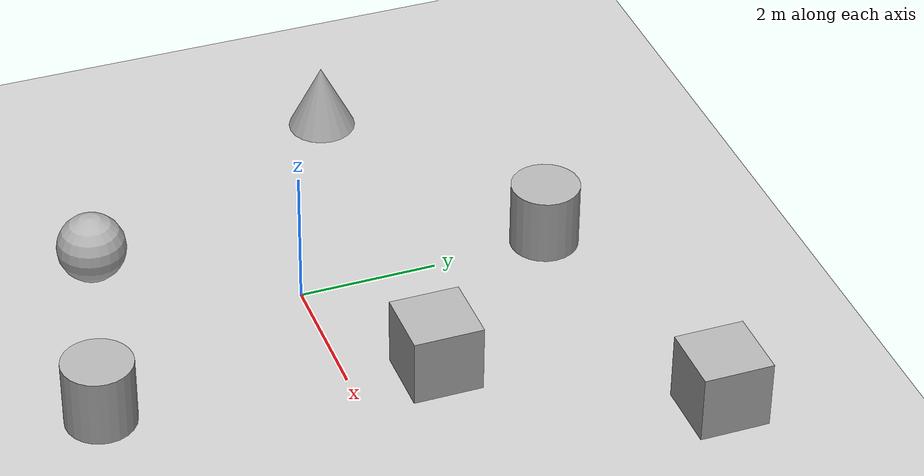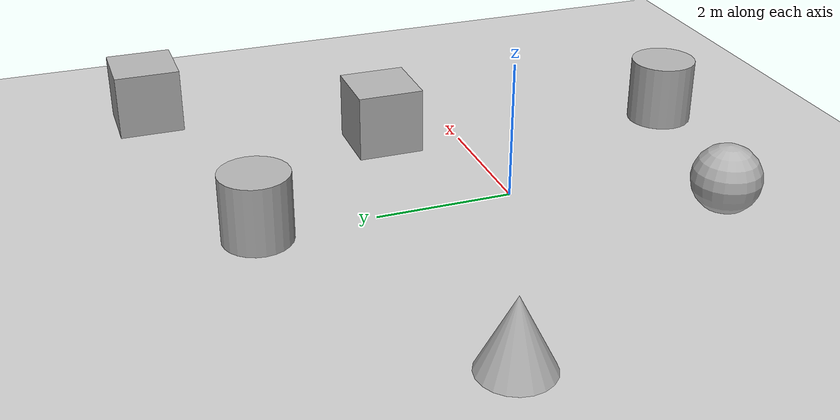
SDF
<sdf version='1.10'>
  <world name='simple_sim_world'>
    <physics name='1ms' type='ignored'>
      <max_step_size>0.001</max_step_size>
      <real_time_factor>1</real_time_factor>
      <real_time_update_rate>1000</real_time_update_rate>
    </physics>

    <plugin
      filename="gz-sim-sensors-system"
      name="gz::sim::systems::Sensors">
      <render_engine>ogre2</render_engine>
    </plugin>
    <plugin
      filename="gz-sim-imu-system"
      name="gz::sim::systems::Imu">
    </plugin>

    <plugin name='gz::sim::systems::Physics' filename='gz-sim-physics-system'/>
    <plugin name='gz::sim::systems::UserCommands' filename='gz-sim-user-commands-system'/>
    <plugin name='gz::sim::systems::SceneBroadcaster' filename='gz-sim-scene-broadcaster-system'/>
    <plugin name='gz::sim::systems::Contact' filename='gz-sim-contact-system'/>
    <gravity>0 0 -9.8000000000000007</gravity>
    <magnetic_field>5.5644999999999998e-06 2.2875799999999999e-05 -4.2388400000000002e-05</magnetic_field>
    <atmosphere type='adiabatic'/>
    <scene>
      <ambient>0.400000006 0.400000006 0.400000006 1</ambient>
      <background>0.699999988 0.699999988 0.699999988 1</background>
      <shadows>true</shadows>
    </scene>

    <model name='ground_plane'>
      <static>true</static>
      <link name='link'>
        <collision name='collision'>
          <geometry>
            <plane>
              <normal>0 0 1</normal>
              <size>100 100</size>
            </plane>
          </geometry>
          <surface>
            <friction>
              <ode/>
            </friction>
            <bounce/>
            <contact/>
          </surface>
        </collision>
        <visual name='visual'>
          <geometry>
            <plane>
              <normal>0 0 1</normal>
              <size>100 100</size>
            </plane>
          </geometry>
          <material>
            <ambient>0.800000012 0.800000012 0.800000012 1</ambient>
            <diffuse>0.800000012 0.800000012 0.800000012 1</diffuse>
            <specular>0.800000012 0.800000012 0.800000012 1</specular>
          </material>
        </visual>
        <pose>0 0 0 0 0 0</pose>
        <inertial>
          <pose>0 0 0 0 0 0</pose>
          <mass>1</mass>
          <inertia>
            <ixx>1</ixx>
            <ixy>0</ixy>
            <ixz>0</ixz>
            <iyy>1</iyy>
            <iyz>0</iyz>
            <izz>1</izz>
          </inertia>
        </inertial>
        <enable_wind>false</enable_wind>
      </link>
      <pose>0 0 0 0 0 0</pose>
      <self_collide>false</self_collide>
    </model>
    <model name='box'>
      <pose>2.272111575905372 1.1850102857128912 0.49999999990199806 6.2287739151293738e-22 9.3279666454713669e-22 -3.6315533669320137e-22</pose>
      <link name='box_link'>
        <inertial>
          <inertia>
            <ixx>0.16666</ixx>
            <ixy>0</ixy>
            <ixz>0</ixz>
            <iyy>0.16666</iyy>
            <iyz>0</iyz>
            <izz>0.16666</izz>
          </inertia>
          <mass>1</mass>
          <pose>0 0 0 0 0 0</pose>
        </inertial>
        <collision name='box_collision'>
          <geometry>
            <box>
              <size>1 1 1</size>
            </box>
          </geometry>
          <surface>
            <friction>
              <ode/>
            </friction>
            <bounce/>
            <contact/>
          </surface>
        </collision>
        <visual name='box_visual'>
          <geometry>
            <box>
              <size>1 1 1</size>
            </box>
          </geometry>
          <material>
            <ambient>0.300000012 0.300000012 0.300000012 1</ambient>
            <diffuse>0.699999988 0.699999988 0.699999988 1</diffuse>
            <specular>1 1 1 1</specular>
          </material>
        </visual>
        <pose>0 0 0 0 0 0</pose>
        <enable_wind>false</enable_wind>
      </link>
      <static>false</static>
      <self_collide>false</self_collide>
    </model>
    <model name='cylinder'>
      <pose>1.6812653300383893 -3.3732430633719108 0.49999942638036005 2.5801667946704946e-19 2.19751785442317e-19 -7.7094167851470315e-21</pose>
      <link name='cylinder_link'>
        <inertial>
          <inertia>
            <ixx>0.14580000000000001</ixx>
            <ixy>0</ixy>
            <ixz>0</ixz>
            <iyy>0.14580000000000001</iyy>
            <iyz>0</iyz>
            <izz>0.125</izz>
          </inertia>
          <mass>1</mass>
          <pose>0 0 0 0 0 0</pose>
        </inertial>
        <collision name='cylinder_collision'>
          <geometry>
            <cylinder>
              <radius>0.5</radius>
              <length>1</length>
            </cylinder>
          </geometry>
          <surface>
            <friction>
              <ode/>
            </friction>
            <bounce/>
            <contact/>
          </surface>
        </collision>
        <visual name='cylinder_visual'>
          <geometry>
            <cylinder>
              <radius>0.5</radius>
              <length>1</length>
            </cylinder>
          </geometry>
          <material>
            <ambient>0.300000012 0.300000012 0.300000012 1</ambient>
            <diffuse>0.699999988 0.699999988 0.699999988 1</diffuse>
            <specular>1 1 1 1</specular>
          </material>
        </visual>
        <pose>0 0 0 0 0 0</pose>
        <enable_wind>false</enable_wind>
      </link>
      <static>false</static>
      <self_collide>false</self_collide>
    </model>
    <model name='cylinder_0'>
      <pose>-0.031342582016663734 3.6935259266045577 0.49999942638036005 1.2705141803863919e-19 3.2665973555705939e-19 2.3475880288331791e-20</pose>
      <link name='cylinder_link'>
        <inertial>
          <inertia>
            <ixx>0.14580000000000001</ixx>
            <ixy>0</ixy>
            <ixz>0</ixz>
            <iyy>0.14580000000000001</iyy>
            <iyz>0</iyz>
            <izz>0.125</izz>
          </inertia>
          <mass>1</mass>
          <pose>0 0 0 0 0 0</pose>
        </inertial>
        <collision name='cylinder_collision'>
          <geometry>
            <cylinder>
              <radius>0.5</radius>
              <length>1</length>
            </cylinder>
          </geometry>
          <surface>
            <friction>
              <ode/>
            </friction>
            <bounce/>
            <contact/>
          </surface>
        </collision>
        <visual name='cylinder_visual'>
          <geometry>
            <cylinder>
              <radius>0.5</radius>
              <length>1</length>
            </cylinder>
          </geometry>
          <material>
            <ambient>0.300000012 0.300000012 0.300000012 1</ambient>
            <diffuse>0.699999988 0.699999988 0.699999988 1</diffuse>
            <specular>1 1 1 1</specular>
          </material>
        </visual>
        <pose>0 0 0 0 0 0</pose>
        <enable_wind>false</enable_wind>
      </link>
      <static>false</static>
      <self_collide>false</self_collide>
    </model>
    <model name='sphere'>
      <pose>-1.4273977559222901 -2.6353018363102638 0.499999999902001 0 0 0</pose>
      <link name='sphere_link'>
        <inertial>
          <inertia>
            <ixx>0.10000000000000001</ixx>
            <ixy>0</ixy>
            <ixz>0</ixz>
            <iyy>0.10000000000000001</iyy>
            <iyz>0</iyz>
            <izz>0.10000000000000001</izz>
          </inertia>
          <mass>1</mass>
          <pose>0 0 0 0 0 0</pose>
        </inertial>
        <collision name='sphere_collision'>
          <geometry>
            <sphere>
              <radius>0.5</radius>
            </sphere>
          </geometry>
          <surface>
            <friction>
              <ode/>
            </friction>
            <bounce/>
            <contact/>
          </surface>
        </collision>
        <visual name='sphere_visual'>
          <geometry>
            <sphere>
              <radius>0.5</radius>
            </sphere>
          </geometry>
          <material>
            <ambient>0.300000012 0.300000012 0.300000012 1</ambient>
            <diffuse>0.699999988 0.699999988 0.699999988 1</diffuse>
            <specular>1 1 1 1</specular>
          </material>
        </visual>
        <pose>0 0 0 0 0 0</pose>
        <enable_wind>false</enable_wind>
      </link>
      <static>false</static>
      <self_collide>false</self_collide>
    </model>
    <model name='cone'>
      <pose>-3.9055599064190178 1.6180737714048712 0.49991278817162654 0.00046025769057519609 -0.0017476324727669513 5.2504055994118282e-05</pose>
      <link name='cone_link'>
        <inertial>
          <inertia>
            <ixx>0.074999999999999997</ixx>
            <ixy>0</ixy>
            <ixz>0</ixz>
            <iyy>0.074999999999999997</iyy>
            <iyz>0</iyz>
            <izz>0.074999999999999997</izz>
          </inertia>
          <mass>1</mass>
          <pose>0 0 0 0 0 0</pose>
        </inertial>
        <collision name='cone_collision'>
          <geometry>
            <cone>
              <radius>0.5</radius>
              <length>1</length>
            </cone>
          </geometry>
          <surface>
            <friction>
              <ode/>
            </friction>
            <bounce/>
            <contact/>
          </surface>
        </collision>
        <visual name='cone_visual'>
          <geometry>
            <cone>
              <radius>0.5</radius>
              <length>1</length>
            </cone>
          </geometry>
          <material>
            <ambient>0.300000012 0.300000012 0.300000012 1</ambient>
            <diffuse>0.699999988 0.699999988 0.699999988 1</diffuse>
            <specular>1 1 1 1</specular>
          </material>
        </visual>
        <pose>0 0 0 0 0 0</pose>
        <enable_wind>false</enable_wind>
      </link>
      <static>false</static>
      <self_collide>false</self_collide>
    </model>
    <model name='box_0'>
      <pose>4.2629534924645025 4.5111814422555305 0.49999999990199806 6.2287739151293738e-22 9.3279666454713669e-22 -3.6315533669320137e-22</pose>
      <link name='box_link'>
        <inertial>
          <inertia>
            <ixx>0.16666</ixx>
            <ixy>0</ixy>
            <ixz>0</ixz>
            <iyy>0.16666</iyy>
            <iyz>0</iyz>
            <izz>0.16666</izz>
          </inertia>
          <mass>1</mass>
          <pose>0 0 0 0 0 0</pose>
        </inertial>
        <collision name='box_collision'>
          <geometry>
            <box>
              <size>1 1 1</size>
            </box>
          </geometry>
          <surface>
            <friction>
              <ode/>
            </friction>
            <bounce/>
            <contact/>
          </surface>
        </collision>
        <visual name='box_visual'>
          <geometry>
            <box>
              <size>1 1 1</size>
            </box>
          </geometry>
          <material>
            <ambient>0.300000012 0.300000012 0.300000012 1</ambient>
            <diffuse>0.699999988 0.699999988 0.699999988 1</diffuse>
            <specular>1 1 1 1</specular>
          </material>
        </visual>
        <pose>0 0 0 0 0 0</pose>
        <enable_wind>false</enable_wind>
      </link>
      <static>false</static>
      <self_collide>false</self_collide>
    </model>
    <light name='sun' type='directional'>
      <pose>0 0 10 0 0 0</pose>
      <cast_shadows>true</cast_shadows>
      <intensity>1</intensity>
      <direction>-0.5 0.10000000000000001 -0.90000000000000002</direction>
      <diffuse>0.800000012 0.800000012 0.800000012 1</diffuse>
      <specular>0.200000003 0.200000003 0.200000003 1</specular>
      <attenuation>
        <range>1000</range>
        <linear>0.01</linear>
        <constant>0.90000000000000002</constant>
        <quadratic>0.001</quadratic>
      </attenuation>
      <spot>
        <inner_angle>0</inner_angle>
        <outer_angle>0</outer_angle>
        <falloff>0</falloff>
      </spot>
    </light>
  </world>
</sdf>
